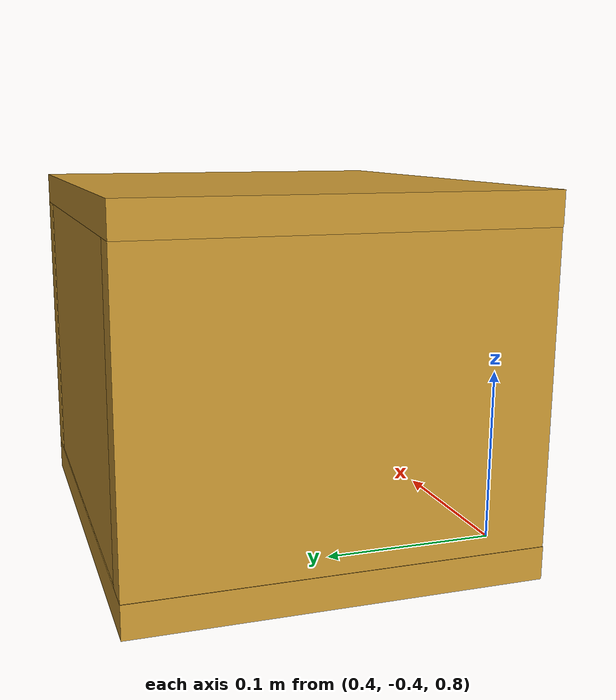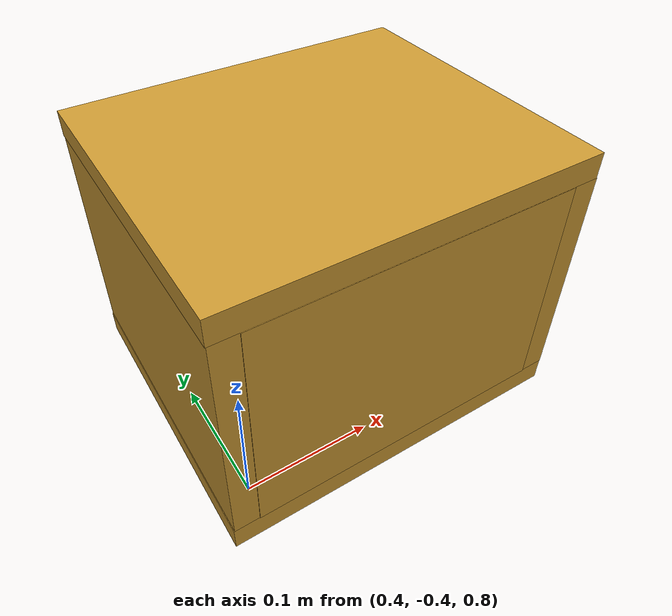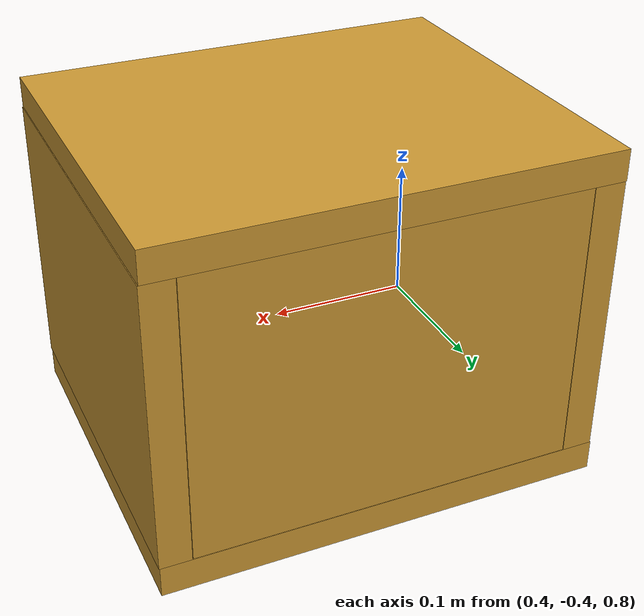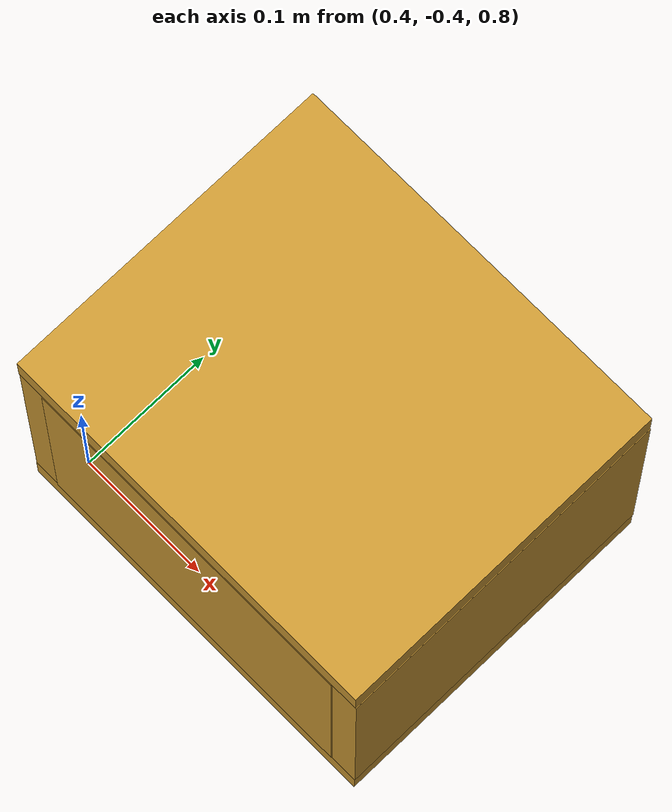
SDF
<sdf version="1.6">
 <world name="bunny_world">
  <physics name="1ms" type="ignored">
   <max_step_size>0.001</max_step_size>
   <real_time_factor>1.0</real_time_factor>
  </physics>
  <plugin filename="gz-sim-physics-system" name="gz::sim::systems::Physics"/>
  <plugin filename="gz-sim-user-commands-system" name="gz::sim::systems::UserCommands"/>
  <plugin filename="gz-sim-scene-broadcaster-system" name="gz::sim::systems::SceneBroadcaster"/>
  <plugin filename="gz-sim-contact-system" name="gz::sim::systems::Contact"/>
  <plugin filename="gz-sim-sensors-system" name="gz::sim::systems::Sensors">
   <render_engine>ogre2</render_engine>
  </plugin>
  <light type="directional" name="sun">
   <pose>0 0 10 0 0 0</pose>
   <diffuse>0.8 0.8 0.8 1</diffuse>
   <specular>0.2 0.2 0.2 1</specular>
   <attenuation>
    <range>1000</range>
    <constant>0.9</constant>
    <linear>0.01</linear>
    <quadratic>0.001</quadratic>
   </attenuation>
   <direction>-0.5 0.1 -0.9</direction>
  </light>
  <model name="ground_plane">
   <static>true</static>
   <link name="link">
    <collision name="collision">
     <geometry><plane><normal>0 0 1</normal><size>100 100</size></plane></geometry>
    </collision>
    <visual name="visual">
     <geometry><plane><normal>0 0 1</normal><size>100 100</size></plane></geometry>
     <material>
      <ambient>0.8 0.8 0.8 1</ambient>
      <diffuse>0.8 0.8 0.8 1</diffuse>
      <specular>0.8 0.8 0.8 1</specular>
     </material>
    </visual>
   </link>
  </model>
  <model name="panel_1">
   <static>true</static>
   <pose>0.654 -0.301 0.892 0 0 0.0000</pose>
   <link name="link">
    <collision name="collision"><geometry><box><size>0.020 0.245 0.184</size></box></geometry></collision>
    <visual name="visual">
     <geometry><box><size>0.020 0.245 0.184</size></box></geometry>
     <material>
      <ambient>0.8 0.6 0.2 1</ambient>
      <diffuse>0.8 0.6 0.2 1</diffuse>
      <specular>0.2 0.2 0.2 1</specular>
     </material>
    </visual>
   </link>
  </model>
  <model name="panel_2">
   <static>true</static>
   <pose>0.387 -0.301 0.892 0 0 0.0000</pose>
   <link name="link">
    <collision name="collision"><geometry><box><size>0.020 0.245 0.184</size></box></geometry></collision>
    <visual name="visual">
     <geometry><box><size>0.020 0.245 0.184</size></box></geometry>
     <material>
      <ambient>0.8 0.6 0.2 1</ambient>
      <diffuse>0.8 0.6 0.2 1</diffuse>
      <specular>0.2 0.2 0.2 1</specular>
     </material>
    </visual>
   </link>
  </model>
  <model name="panel_3">
   <static>true</static>
   <pose>0.520 -0.189 0.892 0 0 0.0000</pose>
   <link name="link">
    <collision name="collision"><geometry><box><size>0.247 0.020 0.184</size></box></geometry></collision>
    <visual name="visual">
     <geometry><box><size>0.247 0.020 0.184</size></box></geometry>
     <material>
      <ambient>0.8 0.6 0.2 1</ambient>
      <diffuse>0.8 0.6 0.2 1</diffuse>
      <specular>0.2 0.2 0.2 1</specular>
     </material>
    </visual>
   </link>
  </model>
  <model name="panel_4">
   <static>true</static>
   <pose>0.520 -0.414 0.892 0 0 0.0000</pose>
   <link name="link">
    <collision name="collision"><geometry><box><size>0.247 0.020 0.184</size></box></geometry></collision>
    <visual name="visual">
     <geometry><box><size>0.247 0.020 0.184</size></box></geometry>
     <material>
      <ambient>0.8 0.6 0.2 1</ambient>
      <diffuse>0.8 0.6 0.2 1</diffuse>
      <specular>0.2 0.2 0.2 1</specular>
     </material>
    </visual>
   </link>
  </model>
  <model name="panel_5">
   <static>true</static>
   <pose>0.520 -0.301 0.790 0 0 0.0000</pose>
   <link name="link">
    <collision name="collision"><geometry><box><size>0.287 0.245 0.020</size></box></geometry></collision>
    <visual name="visual">
     <geometry><box><size>0.287 0.245 0.020</size></box></geometry>
     <material>
      <ambient>0.8 0.6 0.2 1</ambient>
      <diffuse>0.8 0.6 0.2 1</diffuse>
      <specular>0.2 0.2 0.2 1</specular>
     </material>
    </visual>
   </link>
  </model>
  <model name="panel_6">
   <static>true</static>
   <pose>0.520 -0.301 0.994 0 0 0.0000</pose>
   <link name="link">
    <collision name="collision"><geometry><box><size>0.287 0.245 0.020</size></box></geometry></collision>
    <visual name="visual">
     <geometry><box><size>0.287 0.245 0.020</size></box></geometry>
     <material>
      <ambient>0.8 0.6 0.2 1</ambient>
      <diffuse>0.8 0.6 0.2 1</diffuse>
      <specular>0.2 0.2 0.2 1</specular>
     </material>
    </visual>
   </link>
  </model>
 </world>
</sdf>
